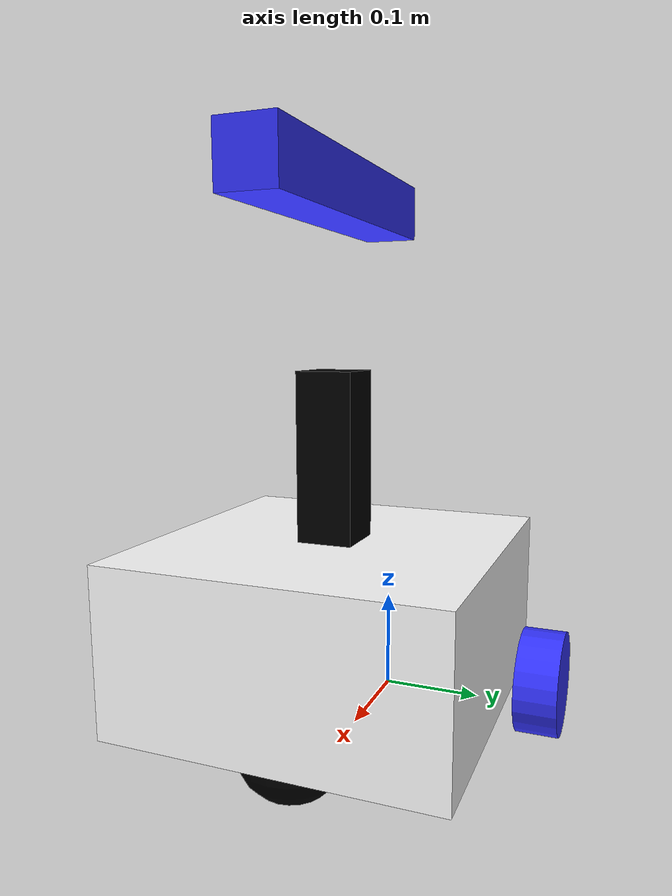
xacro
<?xml version="1.0" encoding="utf-8"?>
<robot xmlns:xacro="http://www.ros.org/wiki/xacro" >
  <xacro:include filename="inertial_macros.xacro"/>

  <material name="white">
    <color rgba="1 1 1 1"/>
  </material>

  <material name="orange">
    <color rgba="1 0.3 0.1 1"/>
  </material>

  <material name="blue">
    <color rgba="0.2 0.2 1 1"/>
  </material>

  <material name="black">
    <color rgba="0 0 0 1"/>
  </material>

  <!-- BASE LINK  -->
  <link name="base_link">

  </link>

  <!-- base -->
  <joint name="base_joint" type="fixed">
    <parent link="base_link"/>
    <child link="base"/>
    <origin xyz="0 0 0.05"/>
  </joint>

  <link name="base">
    <visual>
      <origin xyz="0.15 0 0.075"/>
      <geometry>
        <box size="0.3 0.3 0.15"/>
      </geometry>
      <material name="white"/>
    </visual>
    <collision>
      <origin xyz="0.15 0 0.075"/>
      <geometry>
        <box size="0.3 0.3 0.15"/>
      </geometry>
    </collision>
    <xacro:inertial_box mass="0.5" x="0.3" y="0.3" z="0.15">
      <origin xyz="0.15 0 0.075" rpy="0 0 0"/>
    </xacro:inertial_box>
  </link>

  <!-- left_wheel -->

  <joint name="left_wheel_joint" type="continuous">
    <parent link="base"/>
    <child link="left_wheel"/>
    <origin xyz="0.05 0.175 0" rpy="-${pi/2} 0 0"/>
    <axis xyz="0 0 1"/>
  </joint>

  <link name="left_wheel">
    <visual>
      <geometry>
        <cylinder radius="0.05" length="0.04"/>
      </geometry>
      <material name="blue"/>
    </visual>
    <collision>
      <geometry>
        <cylinder radius="0.05" length="0.04"/>
      </geometry>
    </collision>
    <xacro:inertial_cylinder mass="0.1" length="0.04" radius="0.05">
      <origin xyz="0 0 0" rpy="0 0 0"/>
    </xacro:inertial_cylinder>
  </link>

  <!-- right_wheel -->

  <joint name="right_wheel_joint" type="continuous">
    <parent link="base"/>
    <child link="right_wheel"/>
    <origin xyz="0.05 -0.175 0" rpy="${pi/2} 0 0"/>
    <axis xyz="0 0 -1"/>
  </joint>

  <link name="right_wheel">
    <visual>
      <geometry>
        <cylinder radius="0.05" length="0.04"/>
      </geometry>
      <material name="blue"/>
    </visual>
    <collision>
      <geometry>
        <cylinder radius="0.05" length="0.04"/>
      </geometry>
    </collision>
    <xacro:inertial_cylinder mass="0.1" length="0.04" radius="0.05">
      <origin xyz="0 0 0" rpy="0 0 0"/>
    </xacro:inertial_cylinder>
  </link>

  <joint name="caster_wheel_joint" type="fixed">
    <parent link="base"/>
    <child link="caster_wheel"/>
    <origin xyz="0.24 0 0"/>
  </joint>

  <link name="caster_wheel">
    <visual>
      <geometry>
        <sphere radius="0.05"/>
      </geometry>
      <material name="black"/>
    </visual>
    <collision>
      <geometry>
        <sphere radius="0.05"/>
      </geometry>
    </collision>
    <xacro:inertial_sphere mass="0.1" radius="0.05">
      <origin xyz="0 0 0" rpy="0 0 0"/>
    </xacro:inertial_sphere>
  </link>

  <!-- arm_base -->
  <link name="arm_base_link">
    <visual>
      <geometry>
        <cylinder radius="0.02" length="0.1"/>
      </geometry>
      <material name="orange"/>
    </visual>
    <collision>
      <geometry>
        <cylinder radius="0.02" length="0.1"/>
      </geometry>
    </collision>
    <xacro:inertial_cylinder mass="0.5" length="0.1" radius="0.02">
      <origin xyz="0 0 0" rpy="0 0 0"/>
    </xacro:inertial_cylinder>
  </link>

  <joint name="arm_base_joint" type="fixed">
    <parent link="base_link"/>
    <child link="arm_base_link"/>
    <origin xyz="0.15 0 0.15" rpy="0 0 0"/>
  </joint>

  <!-- arm_link1 -->
  <link name="arm_link1">
    <visual>
      <geometry>
        <box size="0.05 0.05 0.3"/>
      </geometry>
      <material name="black"/>
    </visual>
    <collision>
      <geometry>
        <box size="0.05 0.05 0.3"/>
      </geometry>
    </collision>
    <xacro:inertial_box mass="1.0" x="0.05" y="0.05" z="0.3">
      <origin xyz="0 0 0.15" rpy="0 0 0"/>
    </xacro:inertial_box>
  </link>

  <joint name="arm_joint1" type="revolute">
    <parent link="arm_base_link"/>
    <child link="arm_link1"/>
    <origin xyz="0 0 0.05" rpy="0 0 0"/>
    <axis xyz="0 1 0"/>
    <limit lower="-1.57" upper="1.57" effort="10" velocity="1.0"/>
  </joint>

  <!-- arm_link2 -->
  <link name="arm_link2">
    <visual>
      <geometry>
        <box size="0.3 0.05 0.05"/>
      </geometry>
      <material name="blue"/>
    </visual>
    <collision>
      <geometry>
        <box size="0.3 0.05 0.05"/>
      </geometry>
    </collision>
    <xacro:inertial_box mass="0.8" x="0.3" y="0.05" z="0.05">
      <origin xyz="0.15 0 0" rpy="0 0 0"/>
    </xacro:inertial_box>
  </link>

  <joint name="arm_joint2" type="revolute">
    <parent link="arm_link1"/>
    <child link="arm_link2"/>
    <origin xyz="0 0 0.3" rpy="0 0 0"/>
    <axis xyz="0 0 1"/>
    <limit lower="-3.14" upper="3.14" effort="10" velocity="1.0"/>
  </joint>

  <gazebo reference="caster_wheel">
    <material>Gazebo/Black</material>
    <mu1 value="0.001"/>
    <mu2 value="0.001"/>
  </gazebo>

</robot>

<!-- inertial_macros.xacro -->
<robot xmlns:xacro="http://www.ros.org/wiki/xacro" >

<!-- Specify some standard inertial calculations https://en.wikipedia.org/wiki/List_of_moments_of_inertia -->
<!-- These make use of xacro's mathematical functionality -->

  <xacro:macro name="inertial_sphere" params="mass radius *origin">
    <inertial>
      <xacro:insert_block name="origin"/>
      <mass value="${mass}" />
        <inertia ixx="${(2/5) * mass * (radius*radius)}" ixy="0.0" ixz="0.0"
            iyy="${(2/5) * mass * (radius*radius)}" iyz="0.0"
            izz="${(2/5) * mass * (radius*radius)}" />
    </inertial>
  </xacro:macro>

  <xacro:macro name="inertial_box" params="mass x y z *origin">
    <inertial>
      <xacro:insert_block name="origin"/>
      <mass value="${mass}" />
      <inertia ixx="${(1/12) * mass * (y*y+z*z)}" ixy="0.0" ixz="0.0"
          iyy="${(1/12) * mass * (x*x+z*z)}" iyz="0.0"
           izz="${(1/12) * mass * (x*x+y*y)}" />
    </inertial>
  </xacro:macro>

  <xacro:macro name="inertial_cylinder" params="mass length radius *origin">
    <inertial>
      <xacro:insert_block name="origin"/>
      <mass value="${mass}" />
      <inertia ixx="${(1/12) * mass * (3*radius*radius + length*length)}" ixy="0.0" ixz="0.0"
          iyy="${(1/12) * mass * (3*radius*radius + length*length)}" iyz="0.0"
          izz="${(1/2) * mass * (radius*radius)}" />
      </inertial>
  </xacro:macro>

</robot>
